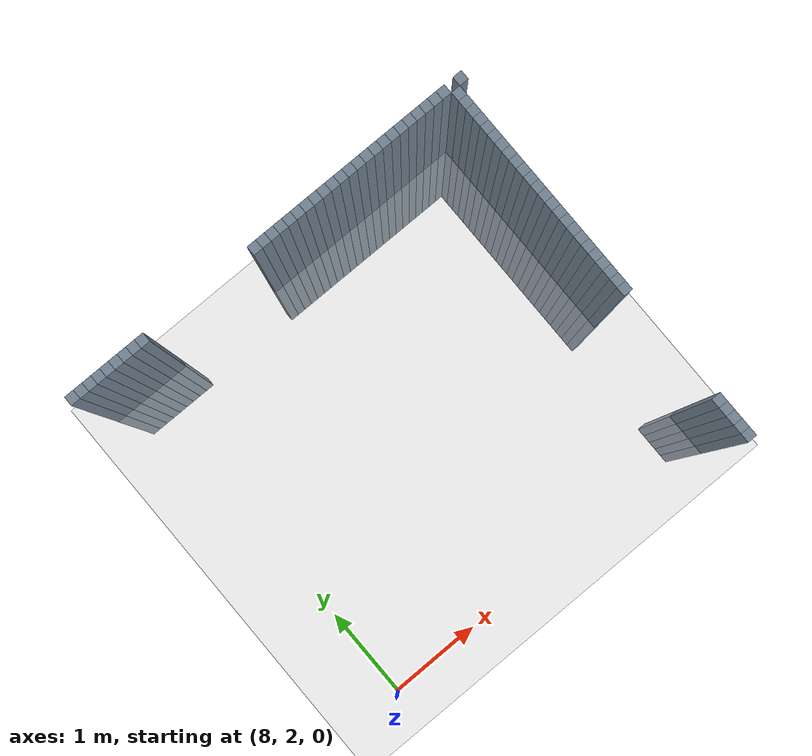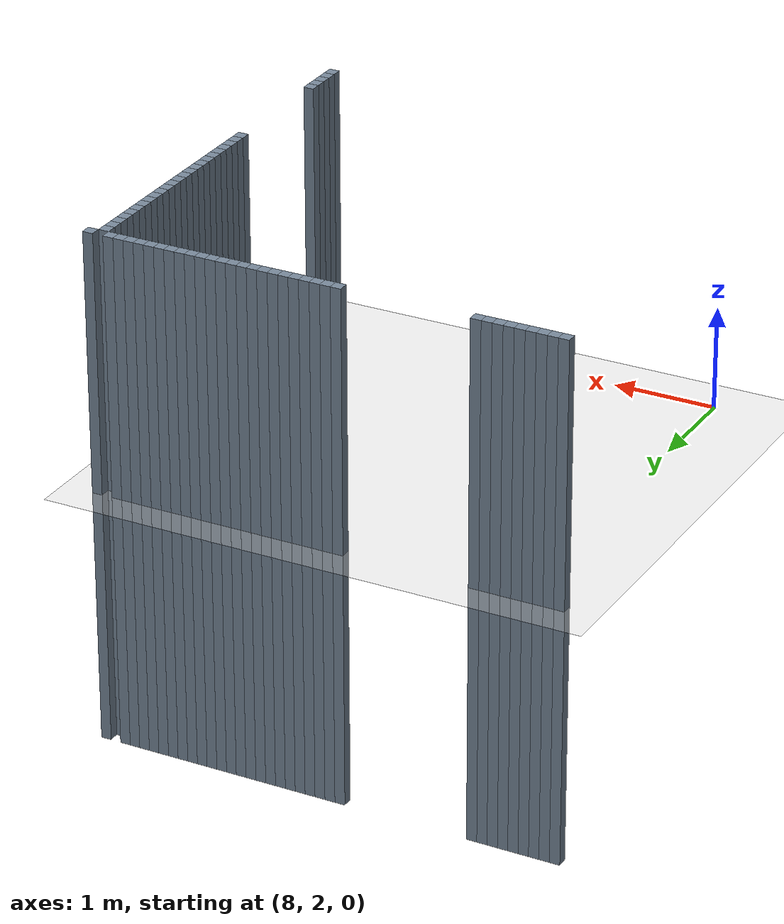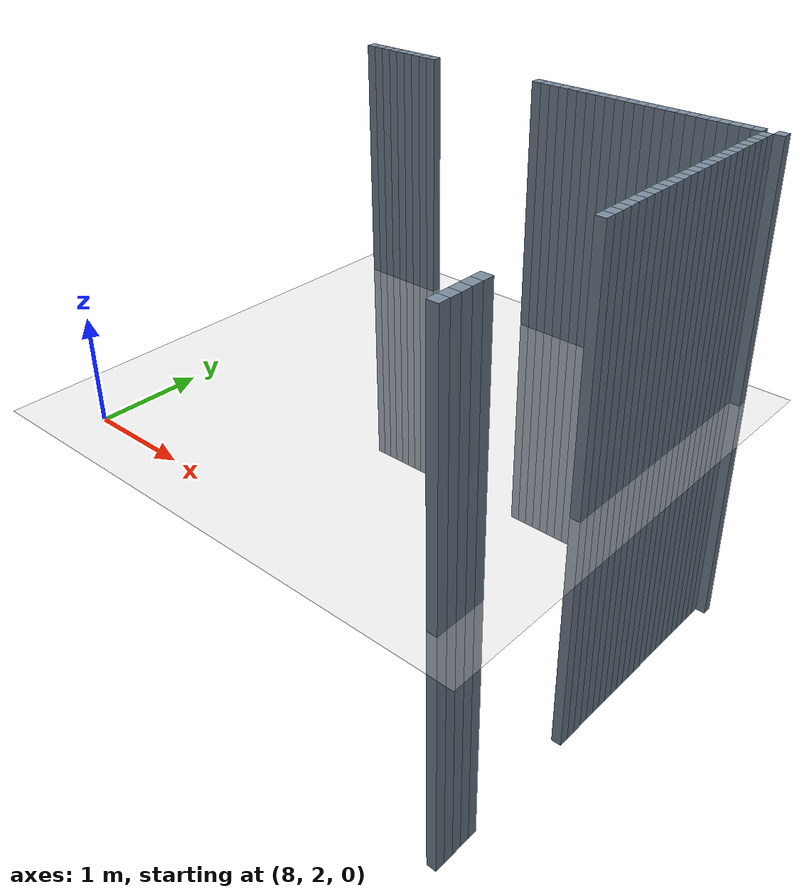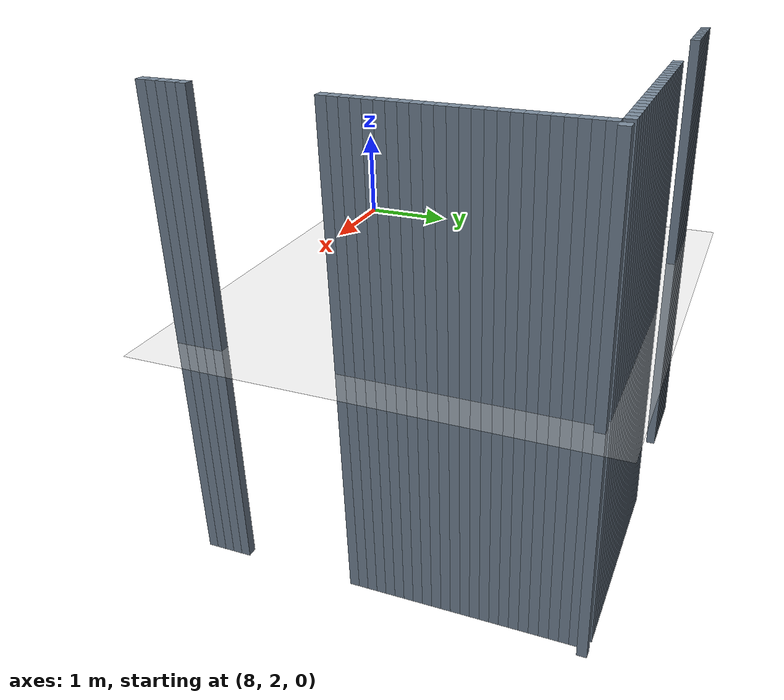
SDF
<sdf version="1.6">
 <world name="default">
  <model name="ground_plane">
   <static>1</static>
   <link name="link">
    <collision name="collision">
     <geometry><plane><normal>0 0 1</normal><size>100 100</size></plane></geometry>
     <surface><friction><ode><mu>100</mu><mu2>50</mu2></ode></friction></surface>
    </collision>
    <visual name="visual">
     <cast_shadows>0</cast_shadows>
     <geometry><plane><normal>0 0 1</normal><size>100 100</size></plane></geometry>
     <material>
      <script><uri>file://media/materials/scripts/gazebo.material</uri><name>Gazebo/Grey</name></script>
     </material>
    </visual>
   </link>
  </model>
  <model name="unit_cylinder_423">
   <static>1</static>
   <pose>7.6 6 0 0 -0 0</pose>
   <link name="link">
    <inertial>
     <mass>1</mass>
     <inertia><ixx>0.145833</ixx><ixy>0</ixy><ixz>0</ixz><iyy>0.145833</iyy><iyz>0</iyz><izz>0.125</izz></inertia>
    </inertial>
    <collision name="collision"><geometry><box><size>0.1 0.1 5</size></box></geometry></collision>
    <visual name="visual">
     <geometry><box><size>0.1 0.1 5</size></box></geometry>
     <material><ambient>0.466667 0.533333 0.6 1</ambient><diffuse>0.466667 0.533333 0.6 1</diffuse></material>
     <material>
      <script><name>Gazebo/Grey</name><uri>file://media/materials/scripts/gazebo.material</uri></script>
     </material>
    </visual>
   </link>
  </model>
  <model name="unit_cylinder_427">
   <static>1</static>
   <pose>7.7 6 0 0 -0 0</pose>
   <link name="link">
    <inertial>
     <mass>1</mass>
     <inertia><ixx>0.145833</ixx><ixy>0</ixy><ixz>0</ixz><iyy>0.145833</iyy><iyz>0</iyz><izz>0.125</izz></inertia>
    </inertial>
    <collision name="collision"><geometry><box><size>0.1 0.1 5</size></box></geometry></collision>
    <visual name="visual">
     <geometry><box><size>0.1 0.1 5</size></box></geometry>
     <material><ambient>0.466667 0.533333 0.6 1</ambient><diffuse>0.466667 0.533333 0.6 1</diffuse></material>
     <material>
      <script><name>Gazebo/Grey</name><uri>file://media/materials/scripts/gazebo.material</uri></script>
     </material>
    </visual>
   </link>
  </model>
  <model name="unit_cylinder_431">
   <static>1</static>
   <pose>7.8 6 0 0 -0 0</pose>
   <link name="link">
    <inertial>
     <mass>1</mass>
     <inertia><ixx>0.145833</ixx><ixy>0</ixy><ixz>0</ixz><iyy>0.145833</iyy><iyz>0</iyz><izz>0.125</izz></inertia>
    </inertial>
    <collision name="collision"><geometry><box><size>0.1 0.1 5</size></box></geometry></collision>
    <visual name="visual">
     <geometry><box><size>0.1 0.1 5</size></box></geometry>
     <material><ambient>0.466667 0.533333 0.6 1</ambient><diffuse>0.466667 0.533333 0.6 1</diffuse></material>
     <material>
      <script><name>Gazebo/Grey</name><uri>file://media/materials/scripts/gazebo.material</uri></script>
     </material>
    </visual>
   </link>
  </model>
  <model name="unit_cylinder_435">
   <static>1</static>
   <pose>7.9 6 0 0 -0 0</pose>
   <link name="link">
    <inertial>
     <mass>1</mass>
     <inertia><ixx>0.145833</ixx><ixy>0</ixy><ixz>0</ixz><iyy>0.145833</iyy><iyz>0</iyz><izz>0.125</izz></inertia>
    </inertial>
    <collision name="collision"><geometry><box><size>0.1 0.1 5</size></box></geometry></collision>
    <visual name="visual">
     <geometry><box><size>0.1 0.1 5</size></box></geometry>
     <material><ambient>0.466667 0.533333 0.6 1</ambient><diffuse>0.466667 0.533333 0.6 1</diffuse></material>
     <material>
      <script><name>Gazebo/Grey</name><uri>file://media/materials/scripts/gazebo.material</uri></script>
     </material>
    </visual>
   </link>
  </model>
  <model name="unit_cylinder_439">
   <static>1</static>
   <pose>8 6 0 0 -0 0</pose>
   <link name="link">
    <inertial>
     <mass>1</mass>
     <inertia><ixx>0.145833</ixx><ixy>0</ixy><ixz>0</ixz><iyy>0.145833</iyy><iyz>0</iyz><izz>0.125</izz></inertia>
    </inertial>
    <collision name="collision"><geometry><box><size>0.1 0.1 5</size></box></geometry></collision>
    <visual name="visual">
     <geometry><box><size>0.1 0.1 5</size></box></geometry>
     <material><ambient>0.466667 0.533333 0.6 1</ambient><diffuse>0.466667 0.533333 0.6 1</diffuse></material>
     <material>
      <script><name>Gazebo/Grey</name><uri>file://media/materials/scripts/gazebo.material</uri></script>
     </material>
    </visual>
   </link>
  </model>
  <model name="unit_cylinder_443">
   <static>1</static>
   <pose>8.1 6 0 0 -0 0</pose>
   <link name="link">
    <inertial>
     <mass>1</mass>
     <inertia><ixx>0.145833</ixx><ixy>0</ixy><ixz>0</ixz><iyy>0.145833</iyy><iyz>0</iyz><izz>0.125</izz></inertia>
    </inertial>
    <collision name="collision"><geometry><box><size>0.1 0.1 5</size></box></geometry></collision>
    <visual name="visual">
     <geometry><box><size>0.1 0.1 5</size></box></geometry>
     <material><ambient>0.466667 0.533333 0.6 1</ambient><diffuse>0.466667 0.533333 0.6 1</diffuse></material>
     <material>
      <script><name>Gazebo/Grey</name><uri>file://media/materials/scripts/gazebo.material</uri></script>
     </material>
    </visual>
   </link>
  </model>
  <model name="unit_cylinder_447">
   <static>1</static>
   <pose>8.2 6 0 0 -0 0</pose>
   <link name="link">
    <inertial>
     <mass>1</mass>
     <inertia><ixx>0.145833</ixx><ixy>0</ixy><ixz>0</ixz><iyy>0.145833</iyy><iyz>0</iyz><izz>0.125</izz></inertia>
    </inertial>
    <collision name="collision"><geometry><box><size>0.1 0.1 5</size></box></geometry></collision>
    <visual name="visual">
     <geometry><box><size>0.1 0.1 5</size></box></geometry>
     <material><ambient>0.466667 0.533333 0.6 1</ambient><diffuse>0.466667 0.533333 0.6 1</diffuse></material>
     <material>
      <script><name>Gazebo/Grey</name><uri>file://media/materials/scripts/gazebo.material</uri></script>
     </material>
    </visual>
   </link>
  </model>
  <model name="unit_cylinder_451">
   <static>1</static>
   <pose>8.3 6 0 0 -0 0</pose>
   <link name="link">
    <inertial>
     <mass>1</mass>
     <inertia><ixx>0.145833</ixx><ixy>0</ixy><ixz>0</ixz><iyy>0.145833</iyy><iyz>0</iyz><izz>0.125</izz></inertia>
    </inertial>
    <collision name="collision"><geometry><box><size>0.1 0.1 5</size></box></geometry></collision>
    <visual name="visual">
     <geometry><box><size>0.1 0.1 5</size></box></geometry>
     <material><ambient>0.466667 0.533333 0.6 1</ambient><diffuse>0.466667 0.533333 0.6 1</diffuse></material>
     <material>
      <script><name>Gazebo/Grey</name><uri>file://media/materials/scripts/gazebo.material</uri></script>
     </material>
    </visual>
   </link>
  </model>
  <model name="unit_cylinder_455">
   <static>1</static>
   <pose>8.4 6 0 0 -0 0</pose>
   <link name="link">
    <inertial>
     <mass>1</mass>
     <inertia><ixx>0.145833</ixx><ixy>0</ixy><ixz>0</ixz><iyy>0.145833</iyy><iyz>0</iyz><izz>0.125</izz></inertia>
    </inertial>
    <collision name="collision"><geometry><box><size>0.1 0.1 5</size></box></geometry></collision>
    <visual name="visual">
     <geometry><box><size>0.1 0.1 5</size></box></geometry>
     <material><ambient>0.466667 0.533333 0.6 1</ambient><diffuse>0.466667 0.533333 0.6 1</diffuse></material>
     <material>
      <script><name>Gazebo/Grey</name><uri>file://media/materials/scripts/gazebo.material</uri></script>
     </material>
    </visual>
   </link>
  </model>
  <model name="unit_cylinder_507">
   <static>1</static>
   <pose>9.7 6 0 0 -0 0</pose>
   <link name="link">
    <inertial>
     <mass>1</mass>
     <inertia><ixx>0.145833</ixx><ixy>0</ixy><ixz>0</ixz><iyy>0.145833</iyy><iyz>0</iyz><izz>0.125</izz></inertia>
    </inertial>
    <collision name="collision"><geometry><box><size>0.1 0.1 5</size></box></geometry></collision>
    <visual name="visual">
     <geometry><box><size>0.1 0.1 5</size></box></geometry>
     <material><ambient>0.466667 0.533333 0.6 1</ambient><diffuse>0.466667 0.533333 0.6 1</diffuse></material>
     <material>
      <script><name>Gazebo/Grey</name><uri>file://media/materials/scripts/gazebo.material</uri></script>
     </material>
    </visual>
   </link>
  </model>
  <model name="unit_cylinder_511">
   <static>1</static>
   <pose>9.8 6 0 0 -0 0</pose>
   <link name="link">
    <inertial>
     <mass>1</mass>
     <inertia><ixx>0.145833</ixx><ixy>0</ixy><ixz>0</ixz><iyy>0.145833</iyy><iyz>0</iyz><izz>0.125</izz></inertia>
    </inertial>
    <collision name="collision"><geometry><box><size>0.1 0.1 5</size></box></geometry></collision>
    <visual name="visual">
     <geometry><box><size>0.1 0.1 5</size></box></geometry>
     <material><ambient>0.466667 0.533333 0.6 1</ambient><diffuse>0.466667 0.533333 0.6 1</diffuse></material>
     <material>
      <script><name>Gazebo/Grey</name><uri>file://media/materials/scripts/gazebo.material</uri></script>
     </material>
    </visual>
   </link>
  </model>
  <model name="unit_cylinder_515">
   <static>1</static>
   <pose>9.9 6 0 0 -0 0</pose>
   <link name="link">
    <inertial>
     <mass>1</mass>
     <inertia><ixx>0.145833</ixx><ixy>0</ixy><ixz>0</ixz><iyy>0.145833</iyy><iyz>0</iyz><izz>0.125</izz></inertia>
    </inertial>
    <collision name="collision"><geometry><box><size>0.1 0.1 5</size></box></geometry></collision>
    <visual name="visual">
     <geometry><box><size>0.1 0.1 5</size></box></geometry>
     <material><ambient>0.466667 0.533333 0.6 1</ambient><diffuse>0.466667 0.533333 0.6 1</diffuse></material>
     <material>
      <script><name>Gazebo/Grey</name><uri>file://media/materials/scripts/gazebo.material</uri></script>
     </material>
    </visual>
   </link>
  </model>
  <model name="unit_cylinder_519">
   <static>1</static>
   <pose>10 6 0 0 -0 0</pose>
   <link name="link">
    <inertial>
     <mass>1</mass>
     <inertia><ixx>0.145833</ixx><ixy>0</ixy><ixz>0</ixz><iyy>0.145833</iyy><iyz>0</iyz><izz>0.125</izz></inertia>
    </inertial>
    <collision name="collision"><geometry><box><size>0.1 0.1 5</size></box></geometry></collision>
    <visual name="visual">
     <geometry><box><size>0.1 0.1 5</size></box></geometry>
     <material><ambient>0.466667 0.533333 0.6 1</ambient><diffuse>0.466667 0.533333 0.6 1</diffuse></material>
     <material>
      <script><name>Gazebo/Grey</name><uri>file://media/materials/scripts/gazebo.material</uri></script>
     </material>
    </visual>
   </link>
  </model>
  <model name="unit_cylinder_523">
   <static>1</static>
   <pose>10.1 6 0 0 -0 0</pose>
   <link name="link">
    <inertial>
     <mass>1</mass>
     <inertia><ixx>0.145833</ixx><ixy>0</ixy><ixz>0</ixz><iyy>0.145833</iyy><iyz>0</iyz><izz>0.125</izz></inertia>
    </inertial>
    <collision name="collision"><geometry><box><size>0.1 0.1 5</size></box></geometry></collision>
    <visual name="visual">
     <geometry><box><size>0.1 0.1 5</size></box></geometry>
     <material><ambient>0.466667 0.533333 0.6 1</ambient><diffuse>0.466667 0.533333 0.6 1</diffuse></material>
     <material>
      <script><name>Gazebo/Grey</name><uri>file://media/materials/scripts/gazebo.material</uri></script>
     </material>
    </visual>
   </link>
  </model>
  <model name="unit_cylinder_527">
   <static>1</static>
   <pose>10.2 6 0 0 -0 0</pose>
   <link name="link">
    <inertial>
     <mass>1</mass>
     <inertia><ixx>0.145833</ixx><ixy>0</ixy><ixz>0</ixz><iyy>0.145833</iyy><iyz>0</iyz><izz>0.125</izz></inertia>
    </inertial>
    <collision name="collision"><geometry><box><size>0.1 0.1 5</size></box></geometry></collision>
    <visual name="visual">
     <geometry><box><size>0.1 0.1 5</size></box></geometry>
     <material><ambient>0.466667 0.533333 0.6 1</ambient><diffuse>0.466667 0.533333 0.6 1</diffuse></material>
     <material>
      <script><name>Gazebo/Grey</name><uri>file://media/materials/scripts/gazebo.material</uri></script>
     </material>
    </visual>
   </link>
  </model>
  <model name="unit_cylinder_531">
   <static>1</static>
   <pose>10.3 6 0 0 -0 0</pose>
   <link name="link">
    <inertial>
     <mass>1</mass>
     <inertia><ixx>0.145833</ixx><ixy>0</ixy><ixz>0</ixz><iyy>0.145833</iyy><iyz>0</iyz><izz>0.125</izz></inertia>
    </inertial>
    <collision name="collision"><geometry><box><size>0.1 0.1 5</size></box></geometry></collision>
    <visual name="visual">
     <geometry><box><size>0.1 0.1 5</size></box></geometry>
     <material><ambient>0.466667 0.533333 0.6 1</ambient><diffuse>0.466667 0.533333 0.6 1</diffuse></material>
     <material>
      <script><name>Gazebo/Grey</name><uri>file://media/materials/scripts/gazebo.material</uri></script>
     </material>
    </visual>
   </link>
  </model>
  <model name="unit_cylinder_535">
   <static>1</static>
   <pose>10.4 6 0 0 -0 0</pose>
   <link name="link">
    <inertial>
     <mass>1</mass>
     <inertia><ixx>0.145833</ixx><ixy>0</ixy><ixz>0</ixz><iyy>0.145833</iyy><iyz>0</iyz><izz>0.125</izz></inertia>
    </inertial>
    <collision name="collision"><geometry><box><size>0.1 0.1 5</size></box></geometry></collision>
    <visual name="visual">
     <geometry><box><size>0.1 0.1 5</size></box></geometry>
     <material><ambient>0.466667 0.533333 0.6 1</ambient><diffuse>0.466667 0.533333 0.6 1</diffuse></material>
     <material>
      <script><name>Gazebo/Grey</name><uri>file://media/materials/scripts/gazebo.material</uri></script>
     </material>
    </visual>
   </link>
  </model>
  <model name="unit_cylinder_539">
   <static>1</static>
   <pose>10.5 6 0 0 -0 0</pose>
   <link name="link">
    <inertial>
     <mass>1</mass>
     <inertia><ixx>0.145833</ixx><ixy>0</ixy><ixz>0</ixz><iyy>0.145833</iyy><iyz>0</iyz><izz>0.125</izz></inertia>
    </inertial>
    <collision name="collision"><geometry><box><size>0.1 0.1 5</size></box></geometry></collision>
    <visual name="visual">
     <geometry><box><size>0.1 0.1 5</size></box></geometry>
     <material><ambient>0.466667 0.533333 0.6 1</ambient><diffuse>0.466667 0.533333 0.6 1</diffuse></material>
     <material>
      <script><name>Gazebo/Grey</name><uri>file://media/materials/scripts/gazebo.material</uri></script>
     </material>
    </visual>
   </link>
  </model>
  <model name="unit_cylinder_543">
   <static>1</static>
   <pose>10.6 6 0 0 -0 0</pose>
   <link name="link">
    <inertial>
     <mass>1</mass>
     <inertia><ixx>0.145833</ixx><ixy>0</ixy><ixz>0</ixz><iyy>0.145833</iyy><iyz>0</iyz><izz>0.125</izz></inertia>
    </inertial>
    <collision name="collision"><geometry><box><size>0.1 0.1 5</size></box></geometry></collision>
    <visual name="visual">
     <geometry><box><size>0.1 0.1 5</size></box></geometry>
     <material><ambient>0.466667 0.533333 0.6 1</ambient><diffuse>0.466667 0.533333 0.6 1</diffuse></material>
     <material>
      <script><name>Gazebo/Grey</name><uri>file://media/materials/scripts/gazebo.material</uri></script>
     </material>
    </visual>
   </link>
  </model>
  <model name="unit_cylinder_547">
   <static>1</static>
   <pose>10.7 6 0 0 -0 0</pose>
   <link name="link">
    <inertial>
     <mass>1</mass>
     <inertia><ixx>0.145833</ixx><ixy>0</ixy><ixz>0</ixz><iyy>0.145833</iyy><iyz>0</iyz><izz>0.125</izz></inertia>
    </inertial>
    <collision name="collision"><geometry><box><size>0.1 0.1 5</size></box></geometry></collision>
    <visual name="visual">
     <geometry><box><size>0.1 0.1 5</size></box></geometry>
     <material><ambient>0.466667 0.533333 0.6 1</ambient><diffuse>0.466667 0.533333 0.6 1</diffuse></material>
     <material>
      <script><name>Gazebo/Grey</name><uri>file://media/materials/scripts/gazebo.material</uri></script>
     </material>
    </visual>
   </link>
  </model>
  <model name="unit_cylinder_551">
   <static>1</static>
   <pose>10.8 6 0 0 -0 0</pose>
   <link name="link">
    <inertial>
     <mass>1</mass>
     <inertia><ixx>0.145833</ixx><ixy>0</ixy><ixz>0</ixz><iyy>0.145833</iyy><iyz>0</iyz><izz>0.125</izz></inertia>
    </inertial>
    <collision name="collision"><geometry><box><size>0.1 0.1 5</size></box></geometry></collision>
    <visual name="visual">
     <geometry><box><size>0.1 0.1 5</size></box></geometry>
     <material><ambient>0.466667 0.533333 0.6 1</ambient><diffuse>0.466667 0.533333 0.6 1</diffuse></material>
     <material>
      <script><name>Gazebo/Grey</name><uri>file://media/materials/scripts/gazebo.material</uri></script>
     </material>
    </visual>
   </link>
  </model>
  <model name="unit_cylinder_555">
   <static>1</static>
   <pose>10.9 6 0 0 -0 0</pose>
   <link name="link">
    <inertial>
     <mass>1</mass>
     <inertia><ixx>0.145833</ixx><ixy>0</ixy><ixz>0</ixz><iyy>0.145833</iyy><iyz>0</iyz><izz>0.125</izz></inertia>
    </inertial>
    <collision name="collision"><geometry><box><size>0.1 0.1 5</size></box></geometry></collision>
    <visual name="visual">
     <geometry><box><size>0.1 0.1 5</size></box></geometry>
     <material><ambient>0.466667 0.533333 0.6 1</ambient><diffuse>0.466667 0.533333 0.6 1</diffuse></material>
     <material>
      <script><name>Gazebo/Grey</name><uri>file://media/materials/scripts/gazebo.material</uri></script>
     </material>
    </visual>
   </link>
  </model>
  <model name="unit_cylinder_559">
   <static>1</static>
   <pose>11 6 0 0 -0 0</pose>
   <link name="link">
    <inertial>
     <mass>1</mass>
     <inertia><ixx>0.145833</ixx><ixy>0</ixy><ixz>0</ixz><iyy>0.145833</iyy><iyz>0</iyz><izz>0.125</izz></inertia>
    </inertial>
    <collision name="collision"><geometry><box><size>0.1 0.1 5</size></box></geometry></collision>
    <visual name="visual">
     <geometry><box><size>0.1 0.1 5</size></box></geometry>
     <material><ambient>0.466667 0.533333 0.6 1</ambient><diffuse>0.466667 0.533333 0.6 1</diffuse></material>
     <material>
      <script><name>Gazebo/Grey</name><uri>file://media/materials/scripts/gazebo.material</uri></script>
     </material>
    </visual>
   </link>
  </model>
  <model name="unit_cylinder_563">
   <static>1</static>
   <pose>11.1 6 0 0 -0 0</pose>
   <link name="link">
    <inertial>
     <mass>1</mass>
     <inertia><ixx>0.145833</ixx><ixy>0</ixy><ixz>0</ixz><iyy>0.145833</iyy><iyz>0</iyz><izz>0.125</izz></inertia>
    </inertial>
    <collision name="collision"><geometry><box><size>0.1 0.1 5</size></box></geometry></collision>
    <visual name="visual">
     <geometry><box><size>0.1 0.1 5</size></box></geometry>
     <material><ambient>0.466667 0.533333 0.6 1</ambient><diffuse>0.466667 0.533333 0.6 1</diffuse></material>
     <material>
      <script><name>Gazebo/Grey</name><uri>file://media/materials/scripts/gazebo.material</uri></script>
     </material>
    </visual>
   </link>
  </model>
  <model name="unit_cylinder_567">
   <static>1</static>
   <pose>11.2 6 0 0 -0 0</pose>
   <link name="link">
    <inertial>
     <mass>1</mass>
     <inertia><ixx>0.145833</ixx><ixy>0</ixy><ixz>0</ixz><iyy>0.145833</iyy><iyz>0</iyz><izz>0.125</izz></inertia>
    </inertial>
    <collision name="collision"><geometry><box><size>0.1 0.1 5</size></box></geometry></collision>
    <visual name="visual">
     <geometry><box><size>0.1 0.1 5</size></box></geometry>
     <material><ambient>0.466667 0.533333 0.6 1</ambient><diffuse>0.466667 0.533333 0.6 1</diffuse></material>
     <material>
      <script><name>Gazebo/Grey</name><uri>file://media/materials/scripts/gazebo.material</uri></script>
     </material>
    </visual>
   </link>
  </model>
  <model name="unit_cylinder_571">
   <static>1</static>
   <pose>11.3 6 0 0 -0 0</pose>
   <link name="link">
    <inertial>
     <mass>1</mass>
     <inertia><ixx>0.145833</ixx><ixy>0</ixy><ixz>0</ixz><iyy>0.145833</iyy><iyz>0</iyz><izz>0.125</izz></inertia>
    </inertial>
    <collision name="collision"><geometry><box><size>0.1 0.1 5</size></box></geometry></collision>
    <visual name="visual">
     <geometry><box><size>0.1 0.1 5</size></box></geometry>
     <material><ambient>0.466667 0.533333 0.6 1</ambient><diffuse>0.466667 0.533333 0.6 1</diffuse></material>
     <material>
      <script><name>Gazebo/Grey</name><uri>file://media/materials/scripts/gazebo.material</uri></script>
     </material>
    </visual>
   </link>
  </model>
  <model name="unit_cylinder_575">
   <static>1</static>
   <pose>11.4 6 0 0 -0 0</pose>
   <link name="link">
    <inertial>
     <mass>1</mass>
     <inertia><ixx>0.145833</ixx><ixy>0</ixy><ixz>0</ixz><iyy>0.145833</iyy><iyz>0</iyz><izz>0.125</izz></inertia>
    </inertial>
    <collision name="collision"><geometry><box><size>0.1 0.1 5</size></box></geometry></collision>
    <visual name="visual">
     <geometry><box><size>0.1 0.1 5</size></box></geometry>
     <material><ambient>0.466667 0.533333 0.6 1</ambient><diffuse>0.466667 0.533333 0.6 1</diffuse></material>
     <material>
      <script><name>Gazebo/Grey</name><uri>file://media/materials/scripts/gazebo.material</uri></script>
     </material>
    </visual>
   </link>
  </model>
  <model name="unit_cylinder_579">
   <static>1</static>
   <pose>11.5 6 0 0 -0 0</pose>
   <link name="link">
    <inertial>
     <mass>1</mass>
     <inertia><ixx>0.145833</ixx><ixy>0</ixy><ixz>0</ixz><iyy>0.145833</iyy><iyz>0</iyz><izz>0.125</izz></inertia>
    </inertial>
    <collision name="collision"><geometry><box><size>0.1 0.1 5</size></box></geometry></collision>
    <visual name="visual">
     <geometry><box><size>0.1 0.1 5</size></box></geometry>
     <material><ambient>0.466667 0.533333 0.6 1</ambient><diffuse>0.466667 0.533333 0.6 1</diffuse></material>
     <material>
      <script><name>Gazebo/Grey</name><uri>file://media/materials/scripts/gazebo.material</uri></script>
     </material>
    </visual>
   </link>
  </model>
  <model name="unit_cylinder_583">
   <static>1</static>
   <pose>11.6 6 0 0 -0 0</pose>
   <link name="link">
    <inertial>
     <mass>1</mass>
     <inertia><ixx>0.145833</ixx><ixy>0</ixy><ixz>0</ixz><iyy>0.145833</iyy><iyz>0</iyz><izz>0.125</izz></inertia>
    </inertial>
    <collision name="collision"><geometry><box><size>0.1 0.1 5</size></box></geometry></collision>
    <visual name="visual">
     <geometry><box><size>0.1 0.1 5</size></box></geometry>
     <material><ambient>0.466667 0.533333 0.6 1</ambient><diffuse>0.466667 0.533333 0.6 1</diffuse></material>
     <material>
      <script><name>Gazebo/Grey</name><uri>file://media/materials/scripts/gazebo.material</uri></script>
     </material>
    </visual>
   </link>
  </model>
  <model name="unit_cylinder_587">
   <static>1</static>
   <pose>11.7 6 0 0 -0 0</pose>
   <link name="link">
    <inertial>
     <mass>1</mass>
     <inertia><ixx>0.145833</ixx><ixy>0</ixy><ixz>0</ixz><iyy>0.145833</iyy><iyz>0</iyz><izz>0.125</izz></inertia>
    </inertial>
    <collision name="collision"><geometry><box><size>0.1 0.1 5</size></box></geometry></collision>
    <visual name="visual">
     <geometry><box><size>0.1 0.1 5</size></box></geometry>
     <material><ambient>0.466667 0.533333 0.6 1</ambient><diffuse>0.466667 0.533333 0.6 1</diffuse></material>
     <material>
      <script><name>Gazebo/Grey</name><uri>file://media/materials/scripts/gazebo.material</uri></script>
     </material>
    </visual>
   </link>
  </model>
  <model name="unit_cylinder_591">
   <static>1</static>
   <pose>11.8 6 0 0 -0 0</pose>
   <link name="link">
    <inertial>
     <mass>1</mass>
     <inertia><ixx>0.145833</ixx><ixy>0</ixy><ixz>0</ixz><iyy>0.145833</iyy><iyz>0</iyz><izz>0.125</izz></inertia>
    </inertial>
    <collision name="collision"><geometry><box><size>0.1 0.1 5</size></box></geometry></collision>
    <visual name="visual">
     <geometry><box><size>0.1 0.1 5</size></box></geometry>
     <material><ambient>0.466667 0.533333 0.6 1</ambient><diffuse>0.466667 0.533333 0.6 1</diffuse></material>
     <material>
      <script><name>Gazebo/Grey</name><uri>file://media/materials/scripts/gazebo.material</uri></script>
     </material>
    </visual>
   </link>
  </model>
  <model name="unit_cylinder_595">
   <static>1</static>
   <pose>11.9 6 0 0 -0 0</pose>
   <link name="link">
    <inertial>
     <mass>1</mass>
     <inertia><ixx>0.145833</ixx><ixy>0</ixy><ixz>0</ixz><iyy>0.145833</iyy><iyz>0</iyz><izz>0.125</izz></inertia>
    </inertial>
    <collision name="collision"><geometry><box><size>0.1 0.1 5</size></box></geometry></collision>
    <visual name="visual">
     <geometry><box><size>0.1 0.1 5</size></box></geometry>
     <material><ambient>0.466667 0.533333 0.6 1</ambient><diffuse>0.466667 0.533333 0.6 1</diffuse></material>
     <material>
      <script><name>Gazebo/Grey</name><uri>file://media/materials/scripts/gazebo.material</uri></script>
     </material>
    </visual>
   </link>
  </model>
  <model name="unit_cylinder_617">
   <static>1</static>
   <pose>12 1.9 0 0 -0 0</pose>
   <link name="link">
    <inertial>
     <mass>1</mass>
     <inertia><ixx>0.145833</ixx><ixy>0</ixy><ixz>0</ixz><iyy>0.145833</iyy><iyz>0</iyz><izz>0.125</izz></inertia>
    </inertial>
    <collision name="collision"><geometry><box><size>0.1 0.1 5</size></box></geometry></collision>
    <visual name="visual">
     <geometry><box><size>0.1 0.1 5</size></box></geometry>
     <material><ambient>0.466667 0.533333 0.6 1</ambient><diffuse>0.466667 0.533333 0.6 1</diffuse></material>
     <material>
      <script><name>Gazebo/Grey</name><uri>file://media/materials/scripts/gazebo.material</uri></script>
     </material>
    </visual>
   </link>
  </model>
  <model name="unit_cylinder_618">
   <static>1</static>
   <pose>12 2 0 0 -0 0</pose>
   <link name="link">
    <inertial>
     <mass>1</mass>
     <inertia><ixx>0.145833</ixx><ixy>0</ixy><ixz>0</ixz><iyy>0.145833</iyy><iyz>0</iyz><izz>0.125</izz></inertia>
    </inertial>
    <collision name="collision"><geometry><box><size>0.1 0.1 5</size></box></geometry></collision>
    <visual name="visual">
     <geometry><box><size>0.1 0.1 5</size></box></geometry>
     <material><ambient>0.466667 0.533333 0.6 1</ambient><diffuse>0.466667 0.533333 0.6 1</diffuse></material>
     <material>
      <script><name>Gazebo/Grey</name><uri>file://media/materials/scripts/gazebo.material</uri></script>
     </material>
    </visual>
   </link>
  </model>
  <model name="unit_cylinder_619">
   <static>1</static>
   <pose>12 2.1 0 0 -0 0</pose>
   <link name="link">
    <inertial>
     <mass>1</mass>
     <inertia><ixx>0.145833</ixx><ixy>0</ixy><ixz>0</ixz><iyy>0.145833</iyy><iyz>0</iyz><izz>0.125</izz></inertia>
    </inertial>
    <collision name="collision"><geometry><box><size>0.1 0.1 5</size></box></geometry></collision>
    <visual name="visual">
     <geometry><box><size>0.1 0.1 5</size></box></geometry>
     <material><ambient>0.466667 0.533333 0.6 1</ambient><diffuse>0.466667 0.533333 0.6 1</diffuse></material>
     <material>
      <script><name>Gazebo/Grey</name><uri>file://media/materials/scripts/gazebo.material</uri></script>
     </material>
    </visual>
   </link>
  </model>
  <model name="unit_cylinder_620">
   <static>1</static>
   <pose>12 2.2 0 0 -0 0</pose>
   <link name="link">
    <inertial>
     <mass>1</mass>
     <inertia><ixx>0.145833</ixx><ixy>0</ixy><ixz>0</ixz><iyy>0.145833</iyy><iyz>0</iyz><izz>0.125</izz></inertia>
    </inertial>
    <collision name="collision"><geometry><box><size>0.1 0.1 5</size></box></geometry></collision>
    <visual name="visual">
     <geometry><box><size>0.1 0.1 5</size></box></geometry>
     <material><ambient>0.466667 0.533333 0.6 1</ambient><diffuse>0.466667 0.533333 0.6 1</diffuse></material>
     <material>
      <script><name>Gazebo/Grey</name><uri>file://media/materials/scripts/gazebo.material</uri></script>
     </material>
    </visual>
   </link>
  </model>
  <model name="unit_cylinder_621">
   <static>1</static>
   <pose>12 2.3 0 0 -0 0</pose>
   <link name="link">
    <inertial>
     <mass>1</mass>
     <inertia><ixx>0.145833</ixx><ixy>0</ixy><ixz>0</ixz><iyy>0.145833</iyy><iyz>0</iyz><izz>0.125</izz></inertia>
    </inertial>
    <collision name="collision"><geometry><box><size>0.1 0.1 5</size></box></geometry></collision>
    <visual name="visual">
     <geometry><box><size>0.1 0.1 5</size></box></geometry>
     <material><ambient>0.466667 0.533333 0.6 1</ambient><diffuse>0.466667 0.533333 0.6 1</diffuse></material>
     <material>
      <script><name>Gazebo/Grey</name><uri>file://media/materials/scripts/gazebo.material</uri></script>
     </material>
    </visual>
   </link>
  </model>
  <model name="unit_cylinder_634">
   <static>1</static>
   <pose>12 3.6 0 0 -0 0</pose>
   <link name="link">
    <inertial>
     <mass>1</mass>
     <inertia><ixx>0.145833</ixx><ixy>0</ixy><ixz>0</ixz><iyy>0.145833</iyy><iyz>0</iyz><izz>0.125</izz></inertia>
    </inertial>
    <collision name="collision"><geometry><box><size>0.1 0.1 5</size></box></geometry></collision>
    <visual name="visual">
     <geometry><box><size>0.1 0.1 5</size></box></geometry>
     <material><ambient>0.466667 0.533333 0.6 1</ambient><diffuse>0.466667 0.533333 0.6 1</diffuse></material>
     <material>
      <script><name>Gazebo/Grey</name><uri>file://media/materials/scripts/gazebo.material</uri></script>
     </material>
    </visual>
   </link>
  </model>
  <model name="unit_cylinder_635">
   <static>1</static>
   <pose>12 3.7 0 0 -0 0</pose>
   <link name="link">
    <inertial>
     <mass>1</mass>
     <inertia><ixx>0.145833</ixx><ixy>0</ixy><ixz>0</ixz><iyy>0.145833</iyy><iyz>0</iyz><izz>0.125</izz></inertia>
    </inertial>
    <collision name="collision"><geometry><box><size>0.1 0.1 5</size></box></geometry></collision>
    <visual name="visual">
     <geometry><box><size>0.1 0.1 5</size></box></geometry>
     <material><ambient>0.466667 0.533333 0.6 1</ambient><diffuse>0.466667 0.533333 0.6 1</diffuse></material>
     <material>
      <script><name>Gazebo/Grey</name><uri>file://media/materials/scripts/gazebo.material</uri></script>
     </material>
    </visual>
   </link>
  </model>
  <model name="unit_cylinder_636">
   <static>1</static>
   <pose>12 3.8 0 0 -0 0</pose>
   <link name="link">
    <inertial>
     <mass>1</mass>
     <inertia><ixx>0.145833</ixx><ixy>0</ixy><ixz>0</ixz><iyy>0.145833</iyy><iyz>0</iyz><izz>0.125</izz></inertia>
    </inertial>
    <collision name="collision"><geometry><box><size>0.1 0.1 5</size></box></geometry></collision>
    <visual name="visual">
     <geometry><box><size>0.1 0.1 5</size></box></geometry>
     <material><ambient>0.466667 0.533333 0.6 1</ambient><diffuse>0.466667 0.533333 0.6 1</diffuse></material>
     <material>
      <script><name>Gazebo/Grey</name><uri>file://media/materials/scripts/gazebo.material</uri></script>
     </material>
    </visual>
   </link>
  </model>
  <model name="unit_cylinder_637">
   <static>1</static>
   <pose>12 3.9 0 0 -0 0</pose>
   <link name="link">
    <inertial>
     <mass>1</mass>
     <inertia><ixx>0.145833</ixx><ixy>0</ixy><ixz>0</ixz><iyy>0.145833</iyy><iyz>0</iyz><izz>0.125</izz></inertia>
    </inertial>
    <collision name="collision"><geometry><box><size>0.1 0.1 5</size></box></geometry></collision>
    <visual name="visual">
     <geometry><box><size>0.1 0.1 5</size></box></geometry>
     <material><ambient>0.466667 0.533333 0.6 1</ambient><diffuse>0.466667 0.533333 0.6 1</diffuse></material>
     <material>
      <script><name>Gazebo/Grey</name><uri>file://media/materials/scripts/gazebo.material</uri></script>
     </material>
    </visual>
   </link>
  </model>
  <model name="unit_cylinder_638">
   <static>1</static>
   <pose>12 4 0 0 -0 0</pose>
   <link name="link">
    <inertial>
     <mass>1</mass>
     <inertia><ixx>0.145833</ixx><ixy>0</ixy><ixz>0</ixz><iyy>0.145833</iyy><iyz>0</iyz><izz>0.125</izz></inertia>
    </inertial>
    <collision name="collision"><geometry><box><size>0.1 0.1 5</size></box></geometry></collision>
    <visual name="visual">
     <geometry><box><size>0.1 0.1 5</size></box></geometry>
     <material><ambient>0.466667 0.533333 0.6 1</ambient><diffuse>0.466667 0.533333 0.6 1</diffuse></material>
     <material>
      <script><name>Gazebo/Grey</name><uri>file://media/materials/scripts/gazebo.material</uri></script>
     </material>
    </visual>
   </link>
  </model>
  <model name="unit_cylinder_639">
   <static>1</static>
   <pose>12 4.1 0 0 -0 0</pose>
   <link name="link">
    <inertial>
     <mass>1</mass>
     <inertia><ixx>0.145833</ixx><ixy>0</ixy><ixz>0</ixz><iyy>0.145833</iyy><iyz>0</iyz><izz>0.125</izz></inertia>
    </inertial>
    <collision name="collision"><geometry><box><size>0.1 0.1 5</size></box></geometry></collision>
    <visual name="visual">
     <geometry><box><size>0.1 0.1 5</size></box></geometry>
     <material><ambient>0.466667 0.533333 0.6 1</ambient><diffuse>0.466667 0.533333 0.6 1</diffuse></material>
     <material>
      <script><name>Gazebo/Grey</name><uri>file://media/materials/scripts/gazebo.material</uri></script>
     </material>
    </visual>
   </link>
  </model>
  <model name="unit_cylinder_640">
   <static>1</static>
   <pose>12 4.2 0 0 -0 0</pose>
   <link name="link">
    <inertial>
     <mass>1</mass>
     <inertia><ixx>0.145833</ixx><ixy>0</ixy><ixz>0</ixz><iyy>0.145833</iyy><iyz>0</iyz><izz>0.125</izz></inertia>
    </inertial>
    <collision name="collision"><geometry><box><size>0.1 0.1 5</size></box></geometry></collision>
    <visual name="visual">
     <geometry><box><size>0.1 0.1 5</size></box></geometry>
     <material><ambient>0.466667 0.533333 0.6 1</ambient><diffuse>0.466667 0.533333 0.6 1</diffuse></material>
     <material>
      <script><name>Gazebo/Grey</name><uri>file://media/materials/scripts/gazebo.material</uri></script>
     </material>
    </visual>
   </link>
  </model>
  <model name="unit_cylinder_641">
   <static>1</static>
   <pose>12 4.3 0 0 -0 0</pose>
   <link name="link">
    <inertial>
     <mass>1</mass>
     <inertia><ixx>0.145833</ixx><ixy>0</ixy><ixz>0</ixz><iyy>0.145833</iyy><iyz>0</iyz><izz>0.125</izz></inertia>
    </inertial>
    <collision name="collision"><geometry><box><size>0.1 0.1 5</size></box></geometry></collision>
    <visual name="visual">
     <geometry><box><size>0.1 0.1 5</size></box></geometry>
     <material><ambient>0.466667 0.533333 0.6 1</ambient><diffuse>0.466667 0.533333 0.6 1</diffuse></material>
     <material>
      <script><name>Gazebo/Grey</name><uri>file://media/materials/scripts/gazebo.material</uri></script>
     </material>
    </visual>
   </link>
  </model>
  <model name="unit_cylinder_642">
   <static>1</static>
   <pose>12 4.4 0 0 -0 0</pose>
   <link name="link">
    <inertial>
     <mass>1</mass>
     <inertia><ixx>0.145833</ixx><ixy>0</ixy><ixz>0</ixz><iyy>0.145833</iyy><iyz>0</iyz><izz>0.125</izz></inertia>
    </inertial>
    <collision name="collision"><geometry><box><size>0.1 0.1 5</size></box></geometry></collision>
    <visual name="visual">
     <geometry><box><size>0.1 0.1 5</size></box></geometry>
     <material><ambient>0.466667 0.533333 0.6 1</ambient><diffuse>0.466667 0.533333 0.6 1</diffuse></material>
     <material>
      <script><name>Gazebo/Grey</name><uri>file://media/materials/scripts/gazebo.material</uri></script>
     </material>
    </visual>
   </link>
  </model>
  <model name="unit_cylinder_643">
   <static>1</static>
   <pose>12 4.5 0 0 -0 0</pose>
   <link name="link">
    <inertial>
     <mass>1</mass>
     <inertia><ixx>0.145833</ixx><ixy>0</ixy><ixz>0</ixz><iyy>0.145833</iyy><iyz>0</iyz><izz>0.125</izz></inertia>
    </inertial>
    <collision name="collision"><geometry><box><size>0.1 0.1 5</size></box></geometry></collision>
    <visual name="visual">
     <geometry><box><size>0.1 0.1 5</size></box></geometry>
     <material><ambient>0.466667 0.533333 0.6 1</ambient><diffuse>0.466667 0.533333 0.6 1</diffuse></material>
     <material>
      <script><name>Gazebo/Grey</name><uri>file://media/materials/scripts/gazebo.material</uri></script>
     </material>
    </visual>
   </link>
  </model>
  <model name="unit_cylinder_644">
   <static>1</static>
   <pose>12 4.6 0 0 -0 0</pose>
   <link name="link">
    <inertial>
     <mass>1</mass>
     <inertia><ixx>0.145833</ixx><ixy>0</ixy><ixz>0</ixz><iyy>0.145833</iyy><iyz>0</iyz><izz>0.125</izz></inertia>
    </inertial>
    <collision name="collision"><geometry><box><size>0.1 0.1 5</size></box></geometry></collision>
    <visual name="visual">
     <geometry><box><size>0.1 0.1 5</size></box></geometry>
     <material><ambient>0.466667 0.533333 0.6 1</ambient><diffuse>0.466667 0.533333 0.6 1</diffuse></material>
     <material>
      <script><name>Gazebo/Grey</name><uri>file://media/materials/scripts/gazebo.material</uri></script>
     </material>
    </visual>
   </link>
  </model>
  <model name="unit_cylinder_645">
   <static>1</static>
   <pose>12 4.7 0 0 -0 0</pose>
   <link name="link">
    <inertial>
     <mass>1</mass>
     <inertia><ixx>0.145833</ixx><ixy>0</ixy><ixz>0</ixz><iyy>0.145833</iyy><iyz>0</iyz><izz>0.125</izz></inertia>
    </inertial>
    <collision name="collision"><geometry><box><size>0.1 0.1 5</size></box></geometry></collision>
    <visual name="visual">
     <geometry><box><size>0.1 0.1 5</size></box></geometry>
     <material><ambient>0.466667 0.533333 0.6 1</ambient><diffuse>0.466667 0.533333 0.6 1</diffuse></material>
     <material>
      <script><name>Gazebo/Grey</name><uri>file://media/materials/scripts/gazebo.material</uri></script>
     </material>
    </visual>
   </link>
  </model>
  <model name="unit_cylinder_646">
   <static>1</static>
   <pose>12 4.8 0 0 -0 0</pose>
   <link name="link">
    <inertial>
     <mass>1</mass>
     <inertia><ixx>0.145833</ixx><ixy>0</ixy><ixz>0</ixz><iyy>0.145833</iyy><iyz>0</iyz><izz>0.125</izz></inertia>
    </inertial>
    <collision name="collision"><geometry><box><size>0.1 0.1 5</size></box></geometry></collision>
    <visual name="visual">
     <geometry><box><size>0.1 0.1 5</size></box></geometry>
     <material><ambient>0.466667 0.533333 0.6 1</ambient><diffuse>0.466667 0.533333 0.6 1</diffuse></material>
     <material>
      <script><name>Gazebo/Grey</name><uri>file://media/materials/scripts/gazebo.material</uri></script>
     </material>
    </visual>
   </link>
  </model>
  <model name="unit_cylinder_647">
   <static>1</static>
   <pose>12 4.9 0 0 -0 0</pose>
   <link name="link">
    <inertial>
     <mass>1</mass>
     <inertia><ixx>0.145833</ixx><ixy>0</ixy><ixz>0</ixz><iyy>0.145833</iyy><iyz>0</iyz><izz>0.125</izz></inertia>
    </inertial>
    <collision name="collision"><geometry><box><size>0.1 0.1 5</size></box></geometry></collision>
    <visual name="visual">
     <geometry><box><size>0.1 0.1 5</size></box></geometry>
     <material><ambient>0.466667 0.533333 0.6 1</ambient><diffuse>0.466667 0.533333 0.6 1</diffuse></material>
     <material>
      <script><name>Gazebo/Grey</name><uri>file://media/materials/scripts/gazebo.material</uri></script>
     </material>
    </visual>
   </link>
  </model>
  <model name="unit_cylinder_648">
   <static>1</static>
   <pose>12 5 0 0 -0 0</pose>
   <link name="link">
    <inertial>
     <mass>1</mass>
     <inertia><ixx>0.145833</ixx><ixy>0</ixy><ixz>0</ixz><iyy>0.145833</iyy><iyz>0</iyz><izz>0.125</izz></inertia>
    </inertial>
    <collision name="collision"><geometry><box><size>0.1 0.1 5</size></box></geometry></collision>
    <visual name="visual">
     <geometry><box><size>0.1 0.1 5</size></box></geometry>
     <material><ambient>0.466667 0.533333 0.6 1</ambient><diffuse>0.466667 0.533333 0.6 1</diffuse></material>
     <material>
      <script><name>Gazebo/Grey</name><uri>file://media/materials/scripts/gazebo.material</uri></script>
     </material>
    </visual>
   </link>
  </model>
  <model name="unit_cylinder_649">
   <static>1</static>
   <pose>12 5.1 0 0 -0 0</pose>
   <link name="link">
    <inertial>
     <mass>1</mass>
     <inertia><ixx>0.145833</ixx><ixy>0</ixy><ixz>0</ixz><iyy>0.145833</iyy><iyz>0</iyz><izz>0.125</izz></inertia>
    </inertial>
    <collision name="collision"><geometry><box><size>0.1 0.1 5</size></box></geometry></collision>
    <visual name="visual">
     <geometry><box><size>0.1 0.1 5</size></box></geometry>
     <material><ambient>0.466667 0.533333 0.6 1</ambient><diffuse>0.466667 0.533333 0.6 1</diffuse></material>
     <material>
      <script><name>Gazebo/Grey</name><uri>file://media/materials/scripts/gazebo.material</uri></script>
     </material>
    </visual>
   </link>
  </model>
  <model name="unit_cylinder_650">
   <static>1</static>
   <pose>12 5.2 0 0 -0 0</pose>
   <link name="link">
    <inertial>
     <mass>1</mass>
     <inertia><ixx>0.145833</ixx><ixy>0</ixy><ixz>0</ixz><iyy>0.145833</iyy><iyz>0</iyz><izz>0.125</izz></inertia>
    </inertial>
    <collision name="collision"><geometry><box><size>0.1 0.1 5</size></box></geometry></collision>
    <visual name="visual">
     <geometry><box><size>0.1 0.1 5</size></box></geometry>
     <material><ambient>0.466667 0.533333 0.6 1</ambient><diffuse>0.466667 0.533333 0.6 1</diffuse></material>
     <material>
      <script><name>Gazebo/Grey</name><uri>file://media/materials/scripts/gazebo.material</uri></script>
     </material>
    </visual>
   </link>
  </model>
  <model name="unit_cylinder_651">
   <static>1</static>
   <pose>12 5.3 0 0 -0 0</pose>
   <link name="link">
    <inertial>
     <mass>1</mass>
     <inertia><ixx>0.145833</ixx><ixy>0</ixy><ixz>0</ixz><iyy>0.145833</iyy><iyz>0</iyz><izz>0.125</izz></inertia>
    </inertial>
    <collision name="collision"><geometry><box><size>0.1 0.1 5</size></box></geometry></collision>
    <visual name="visual">
     <geometry><box><size>0.1 0.1 5</size></box></geometry>
     <material><ambient>0.466667 0.533333 0.6 1</ambient><diffuse>0.466667 0.533333 0.6 1</diffuse></material>
     <material>
      <script><name>Gazebo/Grey</name><uri>file://media/materials/scripts/gazebo.material</uri></script>
     </material>
    </visual>
   </link>
  </model>
  <model name="unit_cylinder_652">
   <static>1</static>
   <pose>12 5.4 0 0 -0 0</pose>
   <link name="link">
    <inertial>
     <mass>1</mass>
     <inertia><ixx>0.145833</ixx><ixy>0</ixy><ixz>0</ixz><iyy>0.145833</iyy><iyz>0</iyz><izz>0.125</izz></inertia>
    </inertial>
    <collision name="collision"><geometry><box><size>0.1 0.1 5</size></box></geometry></collision>
    <visual name="visual">
     <geometry><box><size>0.1 0.1 5</size></box></geometry>
     <material><ambient>0.466667 0.533333 0.6 1</ambient><diffuse>0.466667 0.533333 0.6 1</diffuse></material>
     <material>
      <script><name>Gazebo/Grey</name><uri>file://media/materials/scripts/gazebo.material</uri></script>
     </material>
    </visual>
   </link>
  </model>
  <model name="unit_cylinder_653">
   <static>1</static>
   <pose>12 5.5 0 0 -0 0</pose>
   <link name="link">
    <inertial>
     <mass>1</mass>
     <inertia><ixx>0.145833</ixx><ixy>0</ixy><ixz>0</ixz><iyy>0.145833</iyy><iyz>0</iyz><izz>0.125</izz></inertia>
    </inertial>
    <collision name="collision"><geometry><box><size>0.1 0.1 5</size></box></geometry></collision>
    <visual name="visual">
     <geometry><box><size>0.1 0.1 5</size></box></geometry>
     <material><ambient>0.466667 0.533333 0.6 1</ambient><diffuse>0.466667 0.533333 0.6 1</diffuse></material>
     <material>
      <script><name>Gazebo/Grey</name><uri>file://media/materials/scripts/gazebo.material</uri></script>
     </material>
    </visual>
   </link>
  </model>
  <model name="unit_cylinder_654">
   <static>1</static>
   <pose>12 5.6 0 0 -0 0</pose>
   <link name="link">
    <inertial>
     <mass>1</mass>
     <inertia><ixx>0.145833</ixx><ixy>0</ixy><ixz>0</ixz><iyy>0.145833</iyy><iyz>0</iyz><izz>0.125</izz></inertia>
    </inertial>
    <collision name="collision"><geometry><box><size>0.1 0.1 5</size></box></geometry></collision>
    <visual name="visual">
     <geometry><box><size>0.1 0.1 5</size></box></geometry>
     <material><ambient>0.466667 0.533333 0.6 1</ambient><diffuse>0.466667 0.533333 0.6 1</diffuse></material>
     <material>
      <script><name>Gazebo/Grey</name><uri>file://media/materials/scripts/gazebo.material</uri></script>
     </material>
    </visual>
   </link>
  </model>
  <model name="unit_cylinder_655">
   <static>1</static>
   <pose>12 5.7 0 0 -0 0</pose>
   <link name="link">
    <inertial>
     <mass>1</mass>
     <inertia><ixx>0.145833</ixx><ixy>0</ixy><ixz>0</ixz><iyy>0.145833</iyy><iyz>0</iyz><izz>0.125</izz></inertia>
    </inertial>
    <collision name="collision"><geometry><box><size>0.1 0.1 5</size></box></geometry></collision>
    <visual name="visual">
     <geometry><box><size>0.1 0.1 5</size></box></geometry>
     <material><ambient>0.466667 0.533333 0.6 1</ambient><diffuse>0.466667 0.533333 0.6 1</diffuse></material>
     <material>
      <script><name>Gazebo/Grey</name><uri>file://media/materials/scripts/gazebo.material</uri></script>
     </material>
    </visual>
   </link>
  </model>
  <model name="unit_cylinder_656">
   <static>1</static>
   <pose>12 5.8 0 0 -0 0</pose>
   <link name="link">
    <inertial>
     <mass>1</mass>
     <inertia><ixx>0.145833</ixx><ixy>0</ixy><ixz>0</ixz><iyy>0.145833</iyy><iyz>0</iyz><izz>0.125</izz></inertia>
    </inertial>
    <collision name="collision"><geometry><box><size>0.1 0.1 5</size></box></geometry></collision>
    <visual name="visual">
     <geometry><box><size>0.1 0.1 5</size></box></geometry>
     <material><ambient>0.466667 0.533333 0.6 1</ambient><diffuse>0.466667 0.533333 0.6 1</diffuse></material>
     <material>
      <script><name>Gazebo/Grey</name><uri>file://media/materials/scripts/gazebo.material</uri></script>
     </material>
    </visual>
   </link>
  </model>
  <model name="unit_cylinder_657">
   <static>1</static>
   <pose>12 5.9 0 0 -0 0</pose>
   <link name="link">
    <inertial>
     <mass>1</mass>
     <inertia><ixx>0.145833</ixx><ixy>0</ixy><ixz>0</ixz><iyy>0.145833</iyy><iyz>0</iyz><izz>0.125</izz></inertia>
    </inertial>
    <collision name="collision"><geometry><box><size>0.1 0.1 5</size></box></geometry></collision>
    <visual name="visual">
     <geometry><box><size>0.1 0.1 5</size></box></geometry>
     <material><ambient>0.466667 0.533333 0.6 1</ambient><diffuse>0.466667 0.533333 0.6 1</diffuse></material>
     <material>
      <script><name>Gazebo/Grey</name><uri>file://media/materials/scripts/gazebo.material</uri></script>
     </material>
    </visual>
   </link>
  </model>
  <model name="unit_cylinder_780">
   <static>1</static>
   <pose>12.1 6 0 0 -0 0</pose>
   <link name="link">
    <inertial>
     <mass>1</mass>
     <inertia><ixx>0.145833</ixx><ixy>0</ixy><ixz>0</ixz><iyy>0.145833</iyy><iyz>0</iyz><izz>0.125</izz></inertia>
    </inertial>
    <collision name="collision"><geometry><box><size>0.1 0.1 5</size></box></geometry></collision>
    <visual name="visual">
     <geometry><box><size>0.1 0.1 5</size></box></geometry>
     <material><ambient>0.466667 0.533333 0.6 1</ambient><diffuse>0.466667 0.533333 0.6 1</diffuse></material>
     <material>
      <script><name>Gazebo/Grey</name><uri>file://media/materials/scripts/gazebo.material</uri></script>
     </material>
    </visual>
   </link>
  </model>
 </world>
</sdf>
